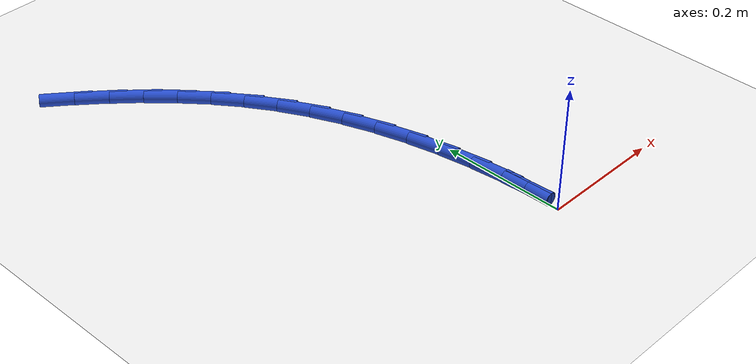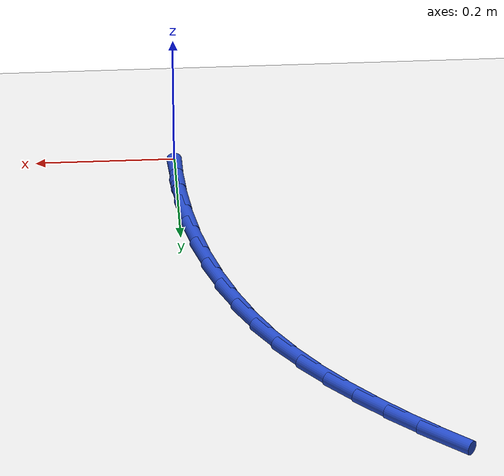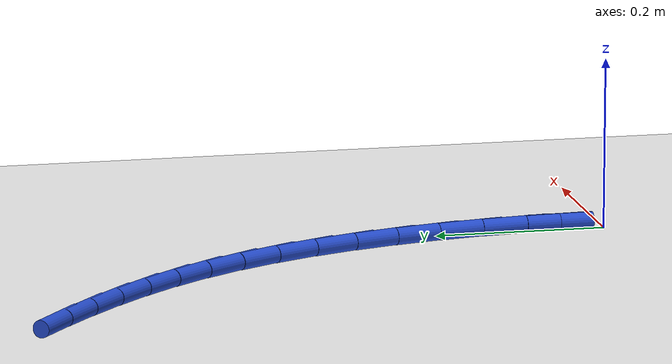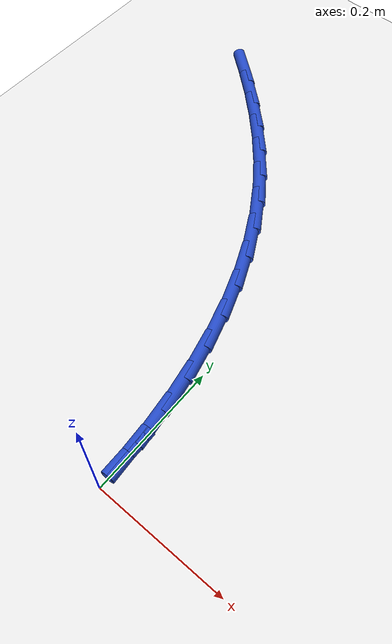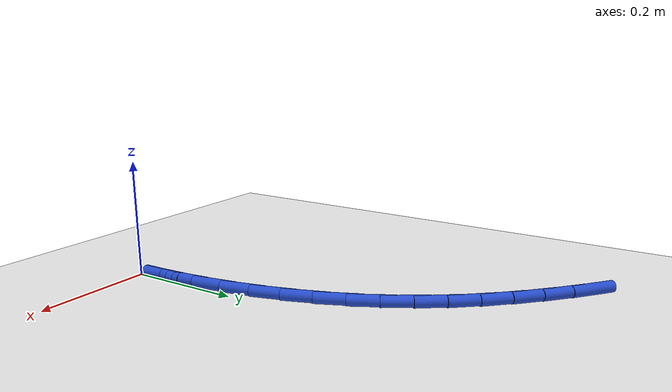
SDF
<sdf version="1.6">
 <world name="default">
  <model name="ground_plane">
   <static>1</static>
   <link name="link">
    <collision name="collision">
     <geometry><plane><normal>0 0 1</normal><size>100 100</size></plane></geometry>
     <surface><friction><ode><mu>100</mu><mu2>50</mu2></ode></friction></surface>
    </collision>
    <visual name="visual">
     <cast_shadows>0</cast_shadows>
     <geometry><plane><normal>0 0 1</normal><size>100 100</size></plane></geometry>
     <material>
      <script><uri>file://media/materials/scripts/gazebo.material</uri><name>Gazebo/WhiteGlow</name></script>
     </material>
    </visual>
   </link>
  </model>
  <model name="line">
   <link name="link_1">
    <pose>-0.0008320517991215848 0.05399772714417463 0.01 0 1.57 -1.5048704781422277</pose>
    <collision name="collision">
     <geometry><cylinder><radius>0.01</radius><length>0.08</length></cylinder></geometry>
    </collision>
    <visual name="visual">
     <material>
      <script><name>Gazebo/Blue</name><uri>file://media/materials/scripts/gazebo.material</uri></script>
     </material>
     <geometry><cylinder><radius>0.01</radius><length>0.08</length></cylinder></geometry>
    </visual>
   </link>
   <link name="link_2">
    <pose>-0.004398561686757774 0.10801813825911963 0.01 0 1.57 -1.4526275899379621</pose>
    <collision name="collision">
     <geometry><cylinder><radius>0.01</radius><length>0.08</length></cylinder></geometry>
    </collision>
    <visual name="visual">
     <material>
      <script><name>Gazebo/Blue</name><uri>file://media/materials/scripts/gazebo.material</uri></script>
     </material>
     <geometry><cylinder><radius>0.01</radius><length>0.08</length></cylinder></geometry>
    </visual>
   </link>
   <link name="link_3">
    <pose>-0.010778870255864508 0.16175978908275865 0.01 0 1.57 -1.3980947076519856</pose>
    <collision name="collision">
     <geometry><cylinder><radius>0.01</radius><length>0.08</length></cylinder></geometry>
    </collision>
    <visual name="visual">
     <material>
      <script><name>Gazebo/Blue</name><uri>file://media/materials/scripts/gazebo.material</uri></script>
     </material>
     <geometry><cylinder><radius>0.01</radius><length>0.08</length></cylinder></geometry>
    </visual>
   </link>
   <link name="link_4">
    <pose>-0.020052318099397774 0.2149212353530155 0.01 0 1.57 -1.340706382776637</pose>
    <collision name="collision">
     <geometry><cylinder><radius>0.01</radius><length>0.08</length></cylinder></geometry>
    </collision>
    <visual name="visual">
     <material>
      <script><name>Gazebo/Blue</name><uri>file://media/materials/scripts/gazebo.material</uri></script>
     </material>
     <geometry><cylinder><radius>0.01</radius><length>0.08</length></cylinder></geometry>
    </visual>
   </link>
   <link name="link_5">
    <pose>-0.032298245810313535 0.2672010328078138 0.01 0 1.57 -1.2799009503117742</pose>
    <collision name="collision">
     <geometry><cylinder><radius>0.01</radius><length>0.08</length></cylinder></geometry>
    </collision>
    <visual name="visual">
     <material>
      <script><name>Gazebo/Blue</name><uri>file://media/materials/scripts/gazebo.material</uri></script>
     </material>
     <geometry><cylinder><radius>0.01</radius><length>0.08</length></cylinder></geometry>
    </visual>
   </link>
   <link name="link_6">
    <pose>-0.04759599398156775 0.3182977371850775 0.01 0 1.57 -1.2151332910141457</pose>
    <collision name="collision">
     <geometry><cylinder><radius>0.01</radius><length>0.08</length></cylinder></geometry>
    </collision>
    <visual name="visual">
     <material>
      <script><name>Gazebo/Blue</name><uri>file://media/materials/scripts/gazebo.material</uri></script>
     </material>
     <geometry><cylinder><radius>0.01</radius><length>0.08</length></cylinder></geometry>
    </visual>
   </link>
   <link name="link_7">
    <pose>-0.0660249032061164 0.3679099042227303 0.01 0 1.57 -1.1458989807519793</pose>
    <collision name="collision">
     <geometry><cylinder><radius>0.01</radius><length>0.08</length></cylinder></geometry>
    </collision>
    <visual name="visual">
     <material>
      <script><name>Gazebo/Blue</name><uri>file://media/materials/scripts/gazebo.material</uri></script>
     </material>
     <geometry><cylinder><radius>0.01</radius><length>0.08</length></cylinder></geometry>
    </visual>
   </link>
   <link name="link_8">
    <pose>-0.08766431407691543 0.4157360896586958 0.01 0 1.57 -1.0717725292923084</pose>
    <collision name="collision">
     <geometry><cylinder><radius>0.01</radius><length>0.08</length></cylinder></geometry>
    </collision>
    <visual name="visual">
     <material>
      <script><name>Gazebo/Blue</name><uri>file://media/materials/scripts/gazebo.material</uri></script>
     </material>
     <geometry><cylinder><radius>0.01</radius><length>0.08</length></cylinder></geometry>
    </visual>
   </link>
   <link name="link_9">
    <pose>-0.11259356718692082 0.4614748492308979 0.01 0 1.57 -0.9940595775428989</pose>
    <collision name="collision">
     <geometry><cylinder><radius>0.01</radius><length>0.08</length></cylinder></geometry>
    </collision>
    <visual name="visual">
     <material>
      <script><name>Gazebo/Blue</name><uri>file://media/materials/scripts/gazebo.material</uri></script>
     </material>
     <geometry><cylinder><radius>0.01</radius><length>0.08</length></cylinder></geometry>
    </visual>
   </link>
   <link name="link_10">
    <pose>-0.14083833751769756 0.5048939811202867 0.01 0 1.57 -0.9209684924660949</pose>
    <collision name="collision">
     <geometry><cylinder><radius>0.01</radius><length>0.08</length></cylinder></geometry>
    </collision>
    <visual name="visual">
     <material>
      <script><name>Gazebo/Blue</name><uri>file://media/materials/scripts/gazebo.material</uri></script>
     </material>
     <geometry><cylinder><radius>0.01</radius><length>0.08</length></cylinder></geometry>
    </visual>
   </link>
   <link name="link_11">
    <pose>-0.17215691414840997 0.5461062801012204 0.01 0 1.57 -0.8556565075977169</pose>
    <collision name="collision">
     <geometry><cylinder><radius>0.01</radius><length>0.08</length></cylinder></geometry>
    </collision>
    <visual name="visual">
     <material>
      <script><name>Gazebo/Blue</name><uri>file://media/materials/scripts/gazebo.material</uri></script>
     </material>
     <geometry><cylinder><radius>0.01</radius><length>0.08</length></cylinder></geometry>
    </visual>
   </link>
   <link name="link_12">
    <pose>-0.20622447334903363 0.5853317778509056 0.01 0 1.57 -0.7984746891385863</pose>
    <collision name="collision">
     <geometry><cylinder><radius>0.01</radius><length>0.08</length></cylinder></geometry>
    </collision>
    <visual name="visual">
     <material>
      <script><name>Gazebo/Blue</name><uri>file://media/materials/scripts/gazebo.material</uri></script>
     </material>
     <geometry><cylinder><radius>0.01</radius><length>0.08</length></cylinder></geometry>
    </visual>
   </link>
   <link name="link_13">
    <pose>-0.24271616520024578 0.6227905398374801 0.01 0 1.57 -0.7494569676097405</pose>
    <collision name="collision">
     <geometry><cylinder><radius>0.01</radius><length>0.08</length></cylinder></geometry>
    </collision>
    <visual name="visual">
     <material>
      <script><name>Gazebo/Blue</name><uri>file://media/materials/scripts/gazebo.material</uri></script>
     </material>
     <geometry><cylinder><radius>0.01</radius><length>0.08</length></cylinder></geometry>
    </visual>
   </link>
   <link name="link_14">
    <pose>-0.28130713978272376 0.6587026315290813 0.01 0 1.57 -0.7084343890013935</pose>
    <collision name="collision">
     <geometry><cylinder><radius>0.01</radius><length>0.08</length></cylinder></geometry>
    </collision>
    <visual name="visual">
     <material>
      <script><name>Gazebo/Blue</name><uri>file://media/materials/scripts/gazebo.material</uri></script>
     </material>
     <geometry><cylinder><radius>0.01</radius><length>0.08</length></cylinder></geometry>
    </visual>
   </link>
   <link name="link_15">
    <pose>-0.3216725471771449 0.6932881183938473 0.01 0 1.57 -0.6751338868688385</pose>
    <collision name="collision">
     <geometry><cylinder><radius>0.01</radius><length>0.08</length></cylinder></geometry>
    </collision>
    <visual name="visual">
     <material>
      <script><name>Gazebo/Blue</name><uri>file://media/materials/scripts/gazebo.material</uri></script>
     </material>
     <geometry><cylinder><radius>0.01</radius><length>0.08</length></cylinder></geometry>
    </visual>
   </link>
   <link name="link_131">
    <pose>-0.0008179649028328337 0.05403345168869252 0.01 0 1.57 -1.555659362497513</pose>
    <collision name="collision">
     <geometry><cylinder><radius>0.01</radius><length>0.08</length></cylinder></geometry>
    </collision>
    <visual name="visual">
     <material>
      <script><name>Gazebo/Blue</name><uri>file://media/materials/scripts/gazebo.material</uri></script>
     </material>
     <geometry><cylinder><radius>0.01</radius><length>0.08</length></cylinder></geometry>
    </visual>
   </link>
  </model>
 </world>
</sdf>
